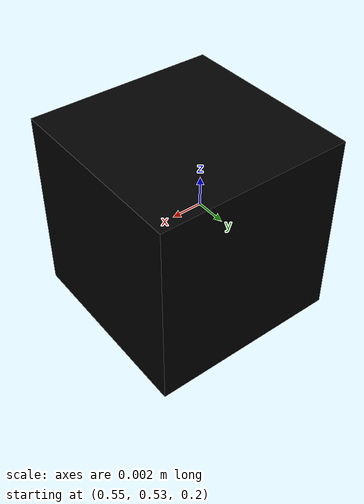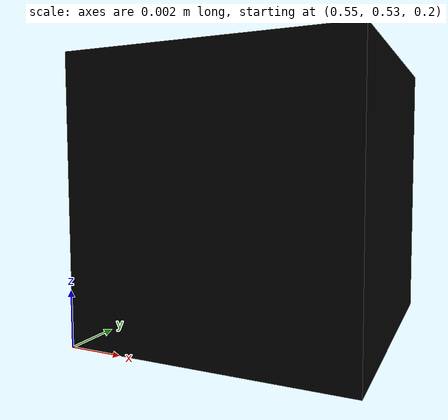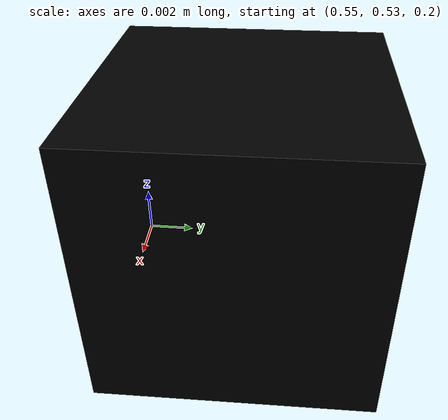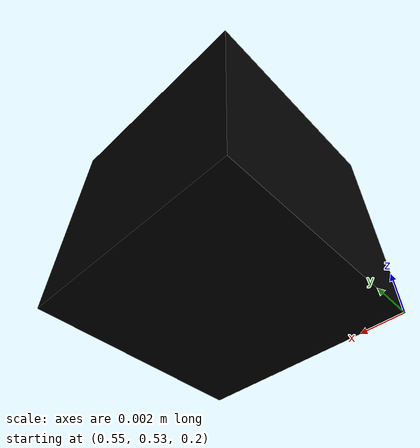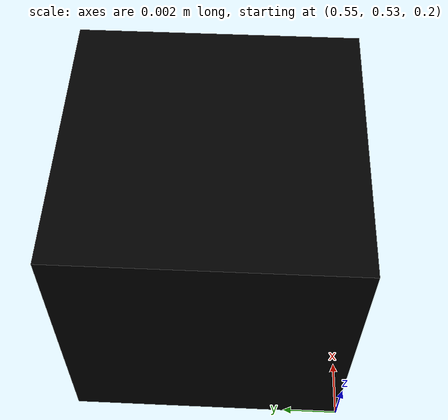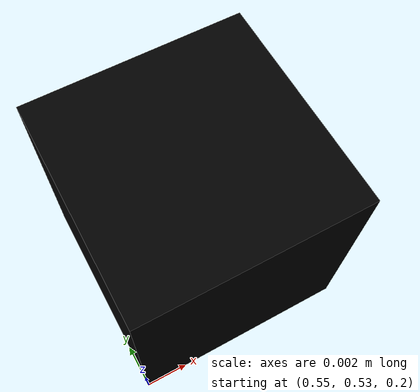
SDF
<?xml version="1.0" ?>
<sdf version="1.7">
	<model name="static_corner_block">
		<static>true</static>
		<link name="corner_block">
			<pose>0.555 0.535 0.20500000000000002 0.0 0.0 0.0</pose>
			<inertial>
				<mass>0.00039000000000000005</mass>
				<inertia>
					<ixx>6.500000000000001e-09</ixx>
					<ixy>0.0</ixy>
					<ixz>0.0</ixz>
					<iyy>6.500000000000001e-09</iyy>
					<iyz>0.0</iyz>
					<izz>6.500000000000001e-09</izz>
				</inertia>
			</inertial>
			<collision name="collision">
				<geometry>
					<box>
						<size>0.01 0.01 0.01</size>
					</box>
				</geometry>
			</collision>
			<visual name="white">
				<geometry>
					<box>
						<size>0.01 0.01 0.01</size>
					</box>
				</geometry>
				<material>
					<diffuse>0 0 0 1</diffuse>
				</material>
			</visual>
		</link>
	</model>
</sdf>
